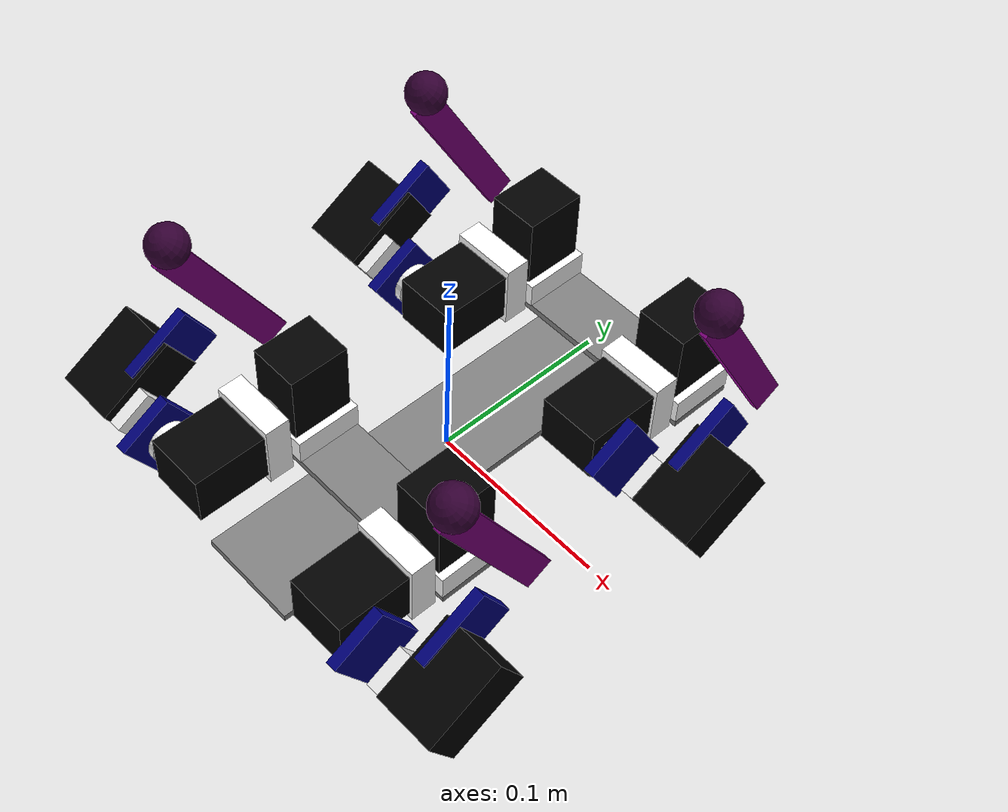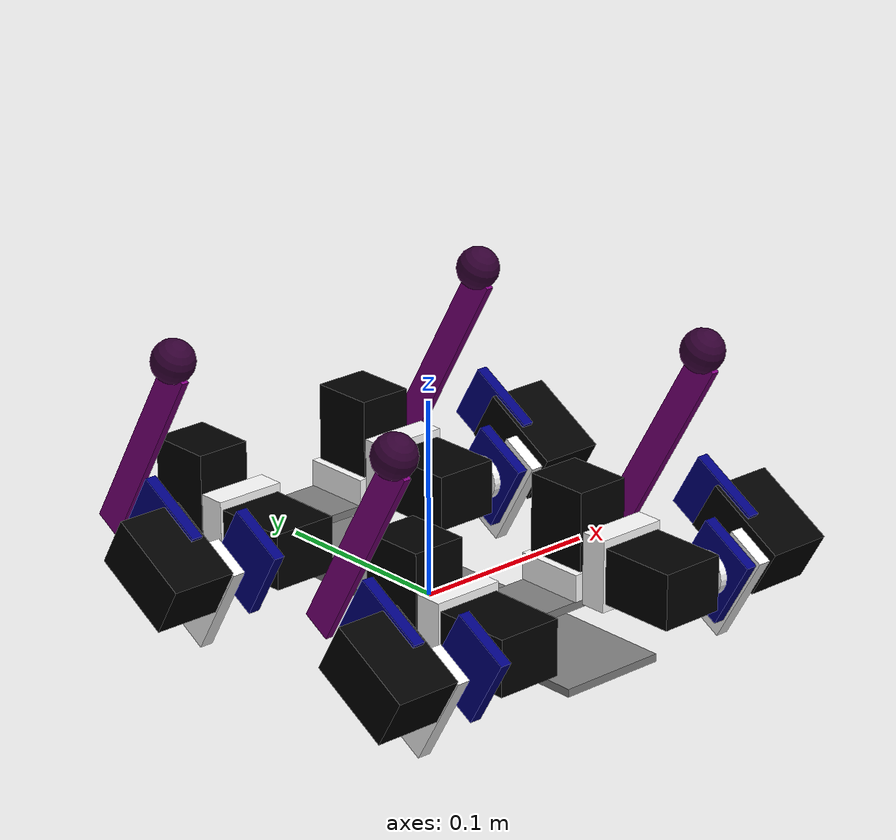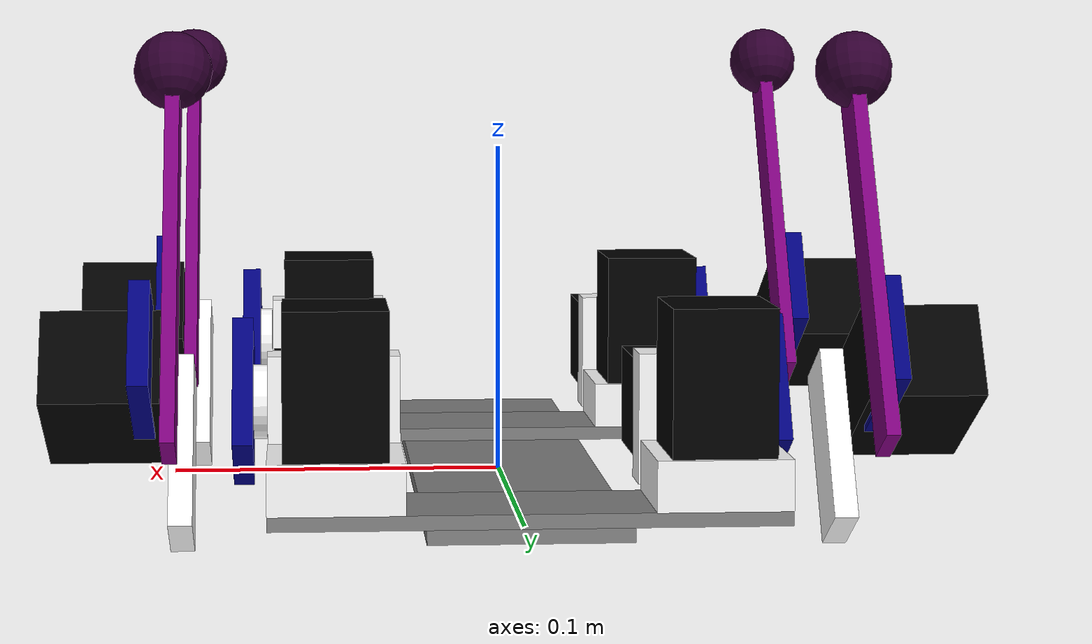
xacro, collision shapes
<?xml version="1.0"?>
<robot name="cubic_doggo" xmlns:xacro="http://www.ros.org/wiki/xacro">
    <xacro:include filename="common_properties.xacro"/>
    <xacro:include filename="cubic_doggo_leg.xacro"/>
    <xacro:include filename="cubic_doggo.ros2_control.xacro"/>
    <link name="world"/>

    <link name="base_link">
        <visual>
            <geometry>
                <mesh filename="package://my_robot_description/mesh/CADv0.1/basePlateTorsoUpper.stl" scale="0.001 0.001 0.001"/>
            </geometry>
            <origin xyz="0 0 0" rpy="0 0 0"/>
            <material name="grey"/>
        </visual>
        <collision>
            <geometry>
                <box size="0.056 0.252 0.004"/>
            </geometry>
            <origin xyz="0.0 0.0 0.002" rpy="0 0 0"/>
        </collision>
        <xacro:box_inertia m="0.06" x="0.056" y="0.252" z="0.004" o_xyz="0 0 0.002" o_rpy="0 0 0"/>
    </link>
    <joint name="world_base_link" type="fixed">
        <parent link="world"/>
        <child  link="base_link"/>
        <origin xyz="0 0 0" rpy="0 0 0"/>
    </joint>

    <link name="base_plate_F">
        <visual>
            <geometry>
                <mesh filename="package://my_robot_description/mesh/CADv1/basePlate.stl" scale="0.001 0.001 0.001"/>
            </geometry>
            <origin xyz="0 0 0" rpy="0 0 0"/>
            <material name="grey"/>
        </visual>
        <collision>
            <geometry>
                <box size="0.141 0.036 0.004"/>
            </geometry>
            <origin xyz="0 0.018 0.002" rpy="0 0 0"/>
        </collision>
        <xacro:box_inertia m="0.0336" x="0.141" y="0.036" z="0.004" o_xyz="0 0.018 0.002" o_rpy="0 0 0"/>
    </link>
    <joint name="torso_base_plate_F" type="fixed">
        <parent link="base_link"/>
        <child  link="base_plate_F"/>
        <origin xyz="0 -0.066 0.004" rpy="0 0 0"/>
    </joint>

    <link name="base_plate_B">
        <visual>
            <geometry>
                <mesh filename="package://my_robot_description/mesh/CADv1/basePlate.stl" scale="0.001 0.001 0.001"/>
            </geometry>
            <origin xyz="0 0 0" rpy="0 0 0"/>
            <material name="grey"/>
        </visual>
        <collision>
            <geometry>
                <box size="0.141 0.036 0.004"/>
            </geometry>
            <origin xyz="0 0.018 0.002" rpy="0 0 0"/>
        </collision>
        <xacro:box_inertia m="0.0336" x="0.141" y="0.036" z="0.004" o_xyz="0 0.018 0.002" o_rpy="0 0 0"/>
    </link>
    <joint name="torso_base_plate_B" type="fixed">
        <parent link="base_link"/>
        <child  link="base_plate_B"/>
        <origin xyz="0 0.09 0.004" rpy="0 0 0"/>
    </joint>
    <xacro:doggo_leg prefix='FL'/>
    <xacro:doggo_leg prefix='FR'/>
    <xacro:doggo_leg prefix='BL'/>
    <xacro:doggo_leg prefix='BR'/>
</robot>

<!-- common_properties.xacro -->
<robot xmlns:xacro="http://www.ros.org/wiki/xacro">
    <xacro:property name="urdf_pi" value="3.1415926"/>

    <material name="white">
        <color rgba="1 1 1 1"/>
    </material>
    <material name="black">
        <color rgba="0 0 0 1"/>
    </material>
    <material name="grey">
        <color rgba="0.5 0.5 0.5 1"/>
    </material>
    <material name="red">
        <color rgba="0.5 0 0 1"/>
    </material>
    <material name="green">
        <color rgba="0 0.5 0 1"/>
    </material>
    <material name="blue">
        <color rgba="0 0 0.5 1"/>
    </material>
    <material name="orange">
        <color rgba="1 0.647 0 1"/>
    </material>
    <material name="yellow">
        <color rgba="1 1 0 1"/>
    </material>
    <material name="purple">
        <color rgba="0.5 0 0.5 1"/>
    </material>
    <material name="dark_purple">
        <color rgba="0.2 0 0.2 1"/>
    </material>
    <material name="dark_green">
        <color rgba="0 0.4 0 1" />
    </material>
    <material name="light_green">
        <color rgba="0 0.6 0 1" />
    </material>

    <!-- wikipedia.org/wiki/List_of_moments_of_inertia#List_of_3D_inertia_tensors -->
    <xacro:macro name="box_inertia" params="m x y z o_xyz o_rpy">
        <inertial>
            <mass value="${m}"/>
            <origin xyz="${o_xyz}" rpy="${o_rpy}"/>
            <inertia ixx="${(m/12) * (z*z + y*y)}" ixy="0" ixz="0"
                     iyy="${(m/12) * (x*x + z*z)}" iyz="0"
                     izz="${(m/12) * (x*x + y*y)}"/>
        </inertial>
    </xacro:macro>
    <xacro:macro name="cylinder_inertia" params="m r l o_xyz o_rpy">
        <inertial>
            <mass value="${m}"/>
            <origin xyz="${o_xyz}" rpy="${o_rpy}"/>
            <inertia ixx="${(m/12) * (3*r*r + l*l)}" ixy="0" ixz="0"
                     iyy="${(m/12) * (3*r*r + l*l)}" iyz="0"
                     izz="${(m/2)  * (r*r)}"/>
        </inertial>
    </xacro:macro>
    <xacro:macro name="sphere_inertia" params="m r o_xyz o_rpy">
        <inertial>
            <mass value="${m}"/>
            <origin xyz="${o_xyz}" rpy="${o_rpy}"/>
            <inertia ixx="${(2*m/5) * (r*r)}" ixy="0" ixz="0"
                     iyy="${(2*m/5) * (r*r)}" iyz="0"
                     izz="${(2*m/5) * (r*r)}"/>
        </inertial>
    </xacro:macro>
    <xacro:macro name="lazy_inertia" params="m">
        <inertial>
            <mass value="${m}"/>
            <inertia ixx="${m/12}" ixy="0" ixz="0"
                     iyy="${m/12}" iyz="0"
                     izz="${m/12}"/>
        </inertial>
    </xacro:macro>
</robot>

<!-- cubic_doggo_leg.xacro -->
<robot xmlns:xacro="http://www.ros.org/wiki/xacro">
    <xacro:macro name="doggo_leg" params="prefix">

    <xacro:property name="servo_x" value="0.0285"/>
    <xacro:property name="servo_y" value="0.0465"/>
    <xacro:property name="servo_z" value="0.034"/>
    <xacro:if value="${prefix == 'FL'}">
        <xacro:property name="rflc"              value=" 1"/>
        <xacro:property name="base_plate"        value="base_plate_F"/>
        <xacro:property name="servo1_holder_xyz" value="-0.052 0.018 0.004"/>
    </xacro:if>
    <xacro:if value="${prefix == 'FR'}">
        <xacro:property name="rflc"              value="-1"/>
        <xacro:property name="base_plate"        value="base_plate_F"/>
        <xacro:property name="servo1_holder_xyz" value=" 0.052 0.018 0.004"/>
    </xacro:if>
    <xacro:if value="${prefix == 'BL'}">
        <xacro:property name="rflc"              value=" 1"/>
        <xacro:property name="base_plate"        value='base_plate_B'/>
        <xacro:property name="servo1_holder_xyz" value="-0.052 0.018 0.004"/>
    </xacro:if>
    <xacro:if value="${prefix == 'BR'}">
        <xacro:property name="rflc"              value="-1"/>
        <xacro:property name="base_plate"        value='base_plate_B'/>
        <xacro:property name="servo1_holder_xyz" value=" 0.052 0.018 0.004"/>
    </xacro:if>

    <link name="servo1_holder_${prefix}">
        <visual>
            <geometry>
                <mesh filename="package://my_robot_description/mesh/CADv1/XL430holderBasic.stl" scale="0.001 0.001 0.001"/>
            </geometry>
            <material name="white"/>
            <origin xyz="0 0 0" rpy="0 0 ${urdf_pi/2}"/>
        </visual>
        <collision>
            <geometry>
                <box size="0.037 0.037 0.014"/>
            </geometry>
            <origin xyz="0 0 0.007" rpy="0 0 ${urdf_pi/2}"/>
        </collision>
        <xacro:box_inertia m="0.0098" x="0.037" y="0.037" z="0.014" o_xyz="0 0 0.007" o_rpy="0 0 ${urdf_pi/2}"/>
    </link>
    <joint name="base_plate_servo1_holder_${prefix}" type="fixed">
        <parent link="${base_plate}"/>
        <child  link="servo1_holder_${prefix}"/>
        <origin xyz="${servo1_holder_xyz}" rpy="0 0 0"/>
    </joint>

    <link name="servo1_${prefix}">
        <visual>
            <geometry>
                <box size="${servo_x} ${servo_y} ${servo_z}"/>
            </geometry>
            <origin xyz="0 0 ${servo_y/2}" rpy="${urdf_pi/2} 0 0"/>
            <material name="black"/>
        </visual>
        <collision>
            <geometry>
                <box size="${servo_x} ${servo_y} ${servo_z}"/>
            </geometry>
            <origin xyz="0 0 ${servo_y/2}" rpy="${urdf_pi/2} 0 0"/>
        </collision>
        <xacro:box_inertia m="0.0572" x="${servo_x}" y="${servo_y}" z="${servo_z}" o_xyz="0 0 ${servo_y/2}" o_rpy="${urdf_pi/2} 0 0"/>
    </link>
    <joint name="servo1_holder_servo1_${prefix}" type="fixed">
        <parent link="servo1_holder_${prefix}"/>
        <child  link="servo1_${prefix}"/>
        <origin xyz="0 0 0.008" rpy="0 0 0"/>
    </joint>

    <link name="servo1_padding_${prefix}">
        <visual>
            <geometry>
                <cylinder radius="0.011" length="0.004"/>
            </geometry>
            <origin xyz="0 -0.002 0" rpy="${urdf_pi/2} 0 0"/>
            <material name="white"/>
        </visual>
        <collision>
            <geometry>
                <cylinder radius="0.011" length="0.004"/>
            </geometry>
            <origin xyz="0 -0.002 0" rpy="${urdf_pi/2} 0 0"/>
        </collision>
        <xacro:cylinder_inertia m="0.0013" r="0.011" l="0.004" o_xyz="0 -0.002 0" o_rpy="${urdf_pi/2} 0 0"/>
    </link>
    <joint name="servo1_servo1_padding_${prefix}" type="revolute">
        <parent link="servo1_${prefix}"/>
        <child  link="servo1_padding_${prefix}"/>
        <origin xyz="0 ${-servo_z/2-0.002} ${0.01+0.0025/2}" rpy="0 0 0"/>
        <axis xyz="0 -1 0"/>
        <limit effort="1000.0" velocity="20.0" lower="${urdf_pi - urdf_pi/3}" upper="${urdf_pi + urdf_pi/3}"/>
        <dynamics friction="0.05" damping="0.1"/>
    </joint>

    <link name="servo2_holder_${prefix}">
        <visual>
            <geometry>
                <mesh filename="package://my_robot_description/mesh/CADv1/XL430holderBasic.stl" scale="0.001 0.001 0.001"/>
            </geometry>
            <material name="white"/>
            <origin xyz="0 0 0" rpy="${urdf_pi/2} 0 0"/>
        </visual>
        <collision>
            <geometry>
                <box size="0.037 0.037 0.014"/>
            </geometry>
            <origin xyz="0 -0.007 0" rpy="${urdf_pi/2} 0 0"/>
        </collision>
        <xacro:box_inertia m="0.0098" x="0.037" y="0.037" z="0.014" o_xyz="0 -0.007 0" o_rpy="${urdf_pi/2} 0 0"/>
    </link>
    <joint name="base_link_servo2_holder_${prefix}" type="fixed">
        <parent link="servo1_padding_${prefix}"/>
        <child  link="servo2_holder_${prefix}"/>
        <origin xyz="0 -0.004 0" rpy="0 0 0"/>
    </joint>

    <link name="servo2_${prefix}">
        <visual>
            <geometry>
                <box size="${servo_x} ${servo_y} ${servo_z}"/>
            </geometry>
            <origin xyz="0 ${-servo_y/2} 0" rpy="0 ${rflc*urdf_pi/2} 0"/>
            <material name="black"/>
        </visual>
        <collision>
            <geometry>
                <box size="${servo_x} ${servo_y} ${servo_z}"/>
            </geometry>
            <origin xyz="0 ${-servo_y/2} 0" rpy="0 ${rflc*urdf_pi/2} 0"/>
        </collision>
        <xacro:box_inertia m="0.0572" x="${servo_x}" y="${servo_y}" z="${servo_z}" o_xyz="0 ${-servo_y/2} 0" o_rpy="0 ${rflc*urdf_pi/2} 0"/>
    </link>
    <joint name="servo2_holder_servo2_${prefix}" type="fixed">
        <parent link="servo2_holder_${prefix}"/>
        <child  link="servo2_${prefix}"/>
        <origin xyz="0 -0.008 0" rpy="0 0 0"/>
    </joint>

    <link name="servo2_padding_${prefix}">
        <visual>
            <geometry>
                <cylinder radius="0.011" length="0.004"/>
            </geometry>
            <origin xyz="${rflc*0.002} 0 0" rpy="0 ${urdf_pi/2} 0"/>
            <material name="white"/>
        </visual>
        <collision>
            <geometry>
                <cylinder radius="0.011" length="0.004"/>
            </geometry>
            <origin xyz="${rflc*0.002} 0 0" rpy="0 ${urdf_pi/2} 0"/>
        </collision>
        <xacro:cylinder_inertia m="0.0013" r="0.011" l="0.004" o_xyz="${rflc*0.002} 0 0" o_rpy="0 ${urdf_pi/2} 0"/>
    </link>
    <joint name="servo2_servo2_padding_${prefix}" type="revolute">
        <parent link="servo2_${prefix}"/>
        <child  link="servo2_padding_${prefix}"/>
        <origin xyz="${rflc*(servo_z/2+0.002)} -0.03525 0" rpy="0 0 0"/>
        <axis xyz="${rflc} 0 0"/>
        <limit effort="1000.0" velocity="20.0" lower="${urdf_pi - 2*urdf_pi/6 - rflc*urdf_pi/6}"
                                               upper="${urdf_pi + 2*urdf_pi/6 - rflc*urdf_pi/6}"/>
        <dynamics friction="0.05" damping="0.1"/>
    </joint>

    <link name="inner_thigh_${prefix}">
        <visual>
            <geometry>
                <mesh filename="package://my_robot_description/mesh/CADv1/thighInner.stl" scale="0.001 0.001 0.001"/>
            </geometry>
            <material name="blue"/>
            <origin xyz="0 0 0" rpy="${-rflc*urdf_pi/2} 0 ${-urdf_pi/2}"/>
        </visual>
        <collision>
            <geometry>
                <box size="0.032 0.040 0.006"/>
            </geometry>
            <origin xyz="${rflc*0.003} -0.016 0" rpy="${-rflc*urdf_pi/2} 0 ${-urdf_pi/2}"/>
        </collision>
        <xacro:box_inertia m="0.0085" x="0.032" y="0.040" z="0.006"
                           o_xyz="${rflc*0.003} -0.016 0" o_rpy="${-rflc*urdf_pi/2} 0 ${-urdf_pi/2}"/>
    </link>
    <joint name="servo2_padding_inner_thigh_${prefix}" type="fixed">
        <parent link="servo2_padding_${prefix}"/>
        <child  link="inner_thigh_${prefix}"/>
        <origin xyz="${rflc*0.004} 0.016 0" rpy="0 0 0"/>
    </joint>

    <link name="outer_thigh_${prefix}">
        <visual>
            <geometry>
                <mesh filename="package://my_robot_description/mesh/CADv1/thighOuter.stl" scale="0.001 0.001 0.001"/>
            </geometry>
            <material name="blue"/>
            <origin xyz="0 0 0" rpy="${-urdf_pi/2} ${urdf_pi/2-rflc*urdf_pi/2} ${-rflc*urdf_pi/2}"/>
        </visual>
        <collision>
            <geometry>
                <box size="0.040 0.032 0.006"/>
            </geometry>
            <origin xyz="${rflc*0.003} -0.0475 0" rpy="${-urdf_pi/2} ${urdf_pi/2-rflc*urdf_pi/2} ${-rflc*urdf_pi/2}"/>
        </collision>
        <xacro:box_inertia m="0.0113" x="0.040" y="0.032" z="0.006"
                           o_xyz="${rflc*0.003} -0.0475 0" o_rpy="${-urdf_pi/2} ${urdf_pi/2-rflc*urdf_pi/2} ${-rflc*urdf_pi/2}"/>
    </link>
    <joint name="inner_thigh_outer_thigh_${prefix}" type="fixed">
        <parent link="inner_thigh_${prefix}"/>
        <child  link="outer_thigh_${prefix}"/>
        <origin xyz="${rflc*0.028} 0 0" rpy="0 0 0"/>
    </joint>

    <link name="servo3_${prefix}">
        <visual>
            <geometry>
                <box size="${servo_x} ${servo_y} ${servo_z}"/>
            </geometry>
            <origin xyz="0 ${-servo_y/2} 0" rpy="0 ${rflc*urdf_pi/2} 0"/>
            <material name="black"/>
        </visual>
        <collision>
            <geometry>
                <box size="${servo_x} ${servo_y} ${servo_z}"/>
            </geometry>
            <origin xyz="0 ${-servo_y/2} 0" rpy="0 ${rflc*urdf_pi/2} 0"/>
        </collision>
        <xacro:box_inertia m="${0.0572+0.0113+0.0078}" x="${servo_x}" y="${servo_y}" z="${servo_z}"
                           o_xyz="0 ${-servo_y/2} 0" o_rpy="0 ${rflc*urdf_pi/2} 0"/>
    </link>
    <joint name="outer_thigh_servo3_${prefix}" type="fixed">
        <parent link="outer_thigh_${prefix}"/>
        <child  link="servo3_${prefix}"/>
        <origin xyz="${rflc*(servo_y/2-0.006-0.0025)} -0.004 0" rpy="0 0 0"/>
    </joint>

    <link name="calfFeet_${prefix}">
        <visual>
            <geometry>
                <mesh filename="package://my_robot_description/mesh/CADv1/calfFeet.stl" scale="0.001 0.001 0.001"/>
            </geometry>
            <material name="purple"/>
            <origin xyz="${-0.004} -0.008 0.038" rpy="0 ${urdf_pi/2} 0"/>
        </visual>
        <collision>
            <geometry>
                <box size="0.110 0.016 0.004"/>
            </geometry>
            <origin xyz="0 ${-0.008+0.008} ${0.038-0.050}" rpy="0 ${-urdf_pi/2} 0"/>
        </collision>
        <xacro:box_inertia m="${0.0251-0.0080}" x="0.110" y="0.016" z="0.004"
                           o_xyz="0 ${-0.008+0.008} ${0.035-0.050}" o_rpy="0 ${-urdf_pi/2} 0"/>
    </link>
    <joint name="servo3_calfFeet_${prefix}" type="revolute">
        <parent link="servo3_${prefix}"/>
        <child  link="calfFeet_${prefix}"/>
        <origin xyz="${rflc*(-servo_z/2-0.002-0.0025)} ${-0.086+0.004} 0" rpy="0 0 0"/>
        <axis xyz="${-rflc} 0 0"/>
        <limit effort="1000.0" velocity="20.0" lower="${5*urdf_pi/8}" upper="${11*urdf_pi/8}"/>
        <dynamics friction="0.0128" damping="0.1"/>
    </joint>

    <link name="calfJoint_${prefix}">
        <visual>
            <geometry>
                <mesh filename="package://my_robot_description/mesh/CADv1/calfJoint.stl" scale="0.001 0.001 0.001"/>
            </geometry>
            <origin xyz="0 0 0" rpy="${urdf_pi/2} 0 ${-rflc*urdf_pi/2}"/>
            <material name="white"/>
        </visual>
        <collision>
            <geometry>
                <box size="0.022 0.053 0.007"/>
            </geometry>
            <origin xyz="${-rflc*0.0005} 0 0.0155" rpy="${urdf_pi/2} 0 ${-rflc*urdf_pi/2}"/>
        </collision>
        <xacro:box_inertia m="${0.0047+0.0015}" x="0.022" y="0.053" z="0.007"
                           o_xyz="${-rflc*0.0005} 0 0.0155" o_rpy="${urdf_pi/2} 0 ${-rflc*urdf_pi/2}"/>
    </link>
    <joint name="servo3_calfJoint_${prefix}" type="revolute">
        <parent link="servo3_${prefix}"/>
        <child  link="calfJoint_${prefix}"/>
        <origin xyz="${rflc*(-servo_z/2-0.002-0.0025)} ${-0.01-0.0025/2} 0" rpy="0 0 0"/>
        <axis xyz="${-rflc} 0 0"/>
        <mimic joint="servo3_calfFeet_${prefix}" multiplier="1.0" offset="0.0"/>
        <limit effort="1000.0" velocity="20.0" lower="${5*urdf_pi/8}" upper="${11*urdf_pi/8}"/>
        <dynamics friction="0.0212" damping="0.1"/>
    </joint>

    <link name="calfSphere_${prefix}">
        <visual>
            <geometry>
                <sphere radius="0.013"/>
            </geometry>
            <origin xyz="0 0 0" rpy="0 0 0"/>
            <material name="dark_purple"/>
        </visual>
        <collision>
            <geometry>
                <sphere radius="0.011"/>
            </geometry>
            <origin xyz="0 0 0" rpy="0 0 0"/>
        </collision>
        <xacro:sphere_inertia m="0.0080" r="0.011" o_xyz="0 0 0" o_rpy="0 0 0"/>
    </link>
    <joint name="calfFeet_calfSphere_${prefix}" type="fixed">
        <parent link="calfFeet_${prefix}"/>
        <child  link="calfSphere_${prefix}"/>
        <origin xyz="0 0.004 ${-0.105+0.035}" rpy="0 0 0"/>
    </joint>
    </xacro:macro>
</robot>
